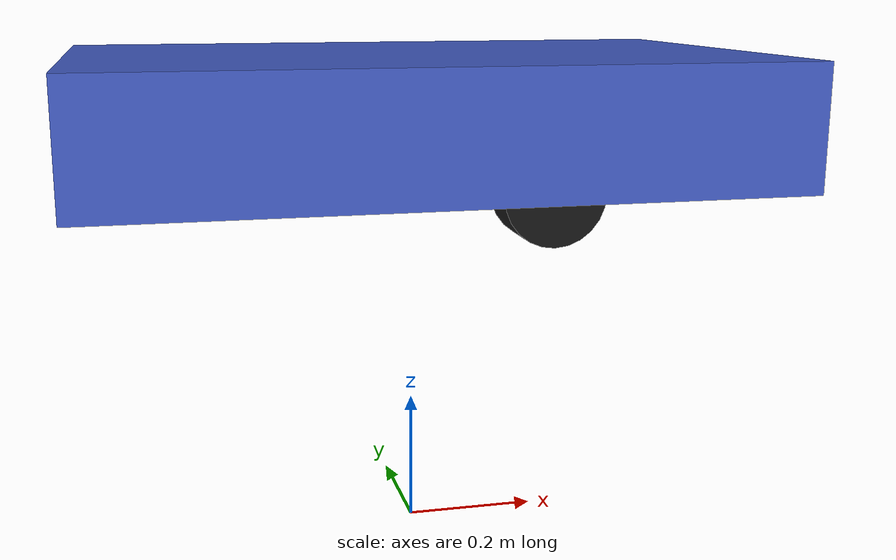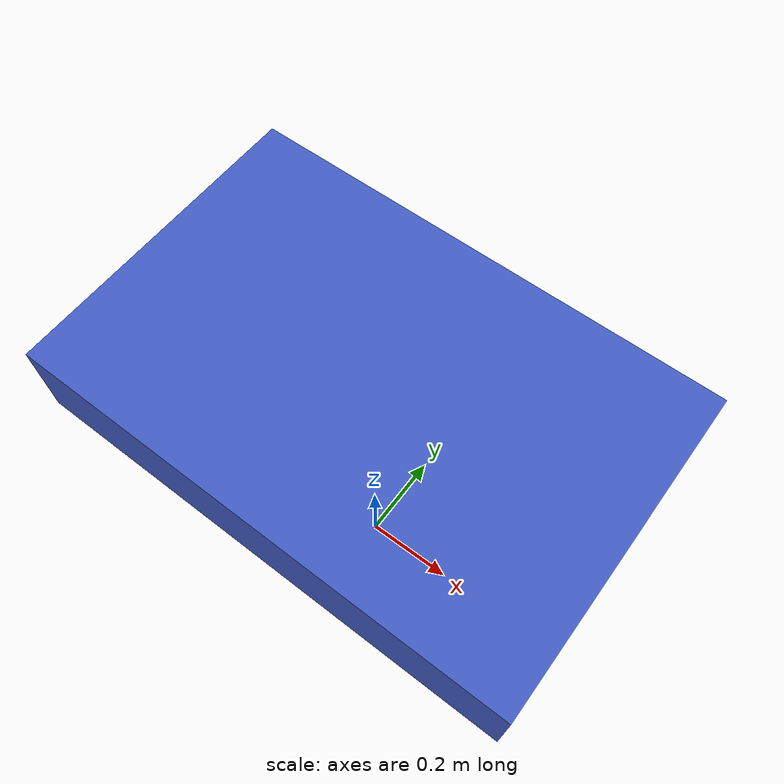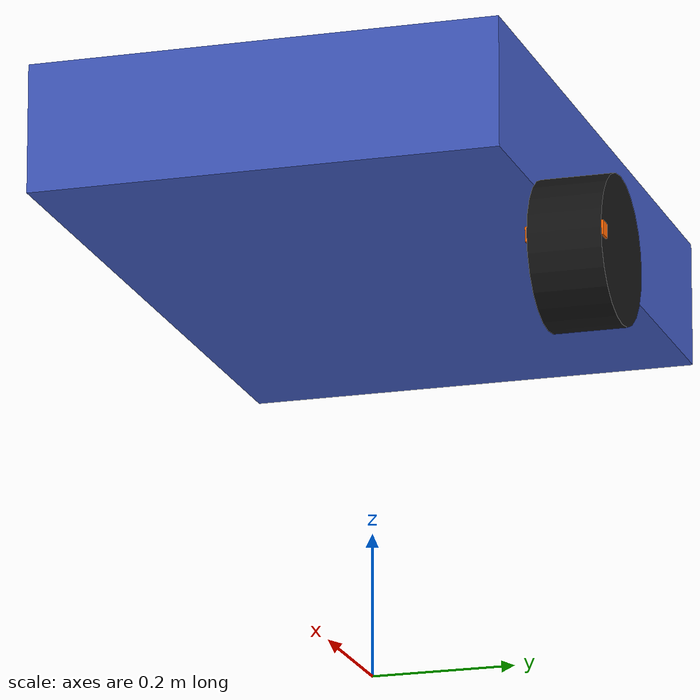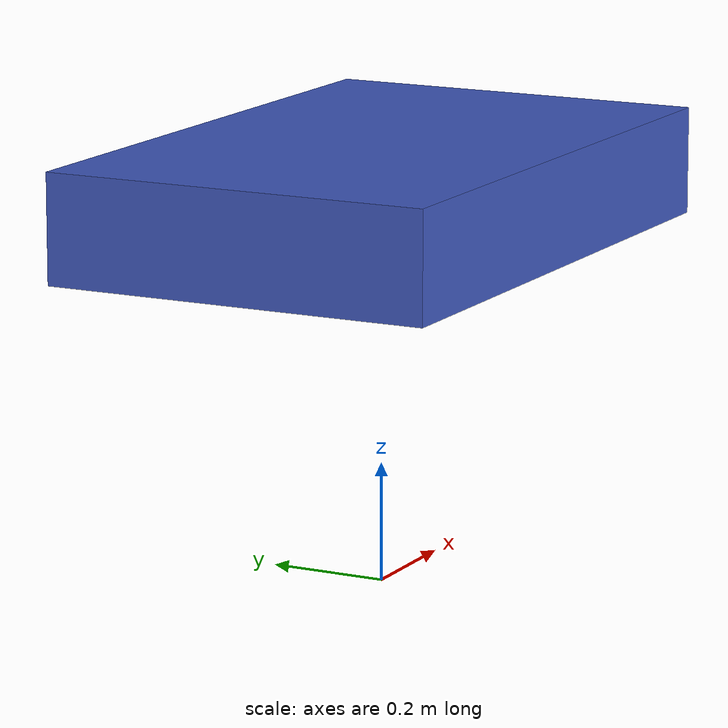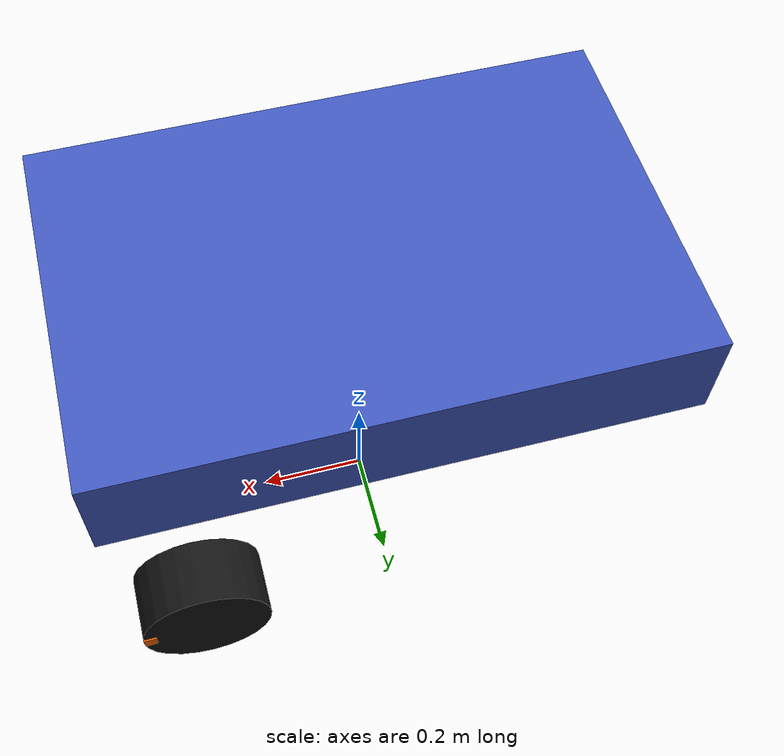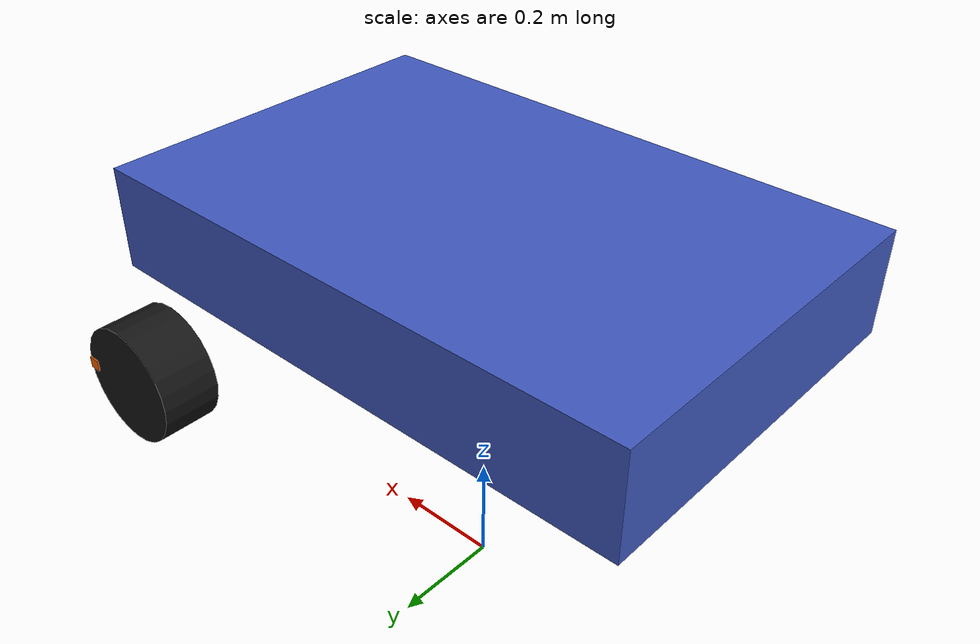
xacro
<?xml version="1.0"?>
<!-- A suspended front-left assembly for checking joint commands, not rover locomotion -->
<robot xmlns:xacro="http://www.ros.org/wiki/xacro" name="assignment1_drivetrain">
  <link name="world"/>
  <joint name="test_stand_mount" type="fixed">
    <parent link="world"/><child link="chassis"/>
    <origin xyz="0 0 0.65"/>
  </joint>
  <link name="chassis">
    <inertial>
      <mass value="30"/>
      <inertia ixx="2.5" iyy="4.0" izz="5.0" ixy="0" ixz="0" iyz="0"/>
    </inertial>
    <visual><geometry><box size="1.0 0.65 0.18"/></geometry>
      <material name="blue"><color rgba="0.25 0.35 0.75 1"/></material>
    </visual>
    <collision><geometry><box size="1.0 0.65 0.18"/></geometry></collision>
  </link>
  <joint name="front_left_steering_joint" type="revolute">
    <parent link="chassis"/><child link="front_left_knuckle"/>
    <origin xyz="0.36 0.4 -0.20"/>
    <axis xyz="0 0 1"/>
    <limit lower="-0.6" upper="0.6" effort="20" velocity="2"/>
  </joint>
  <link name="front_left_knuckle">
    <inertial><mass value="0.5"/>
      <inertia ixx="0.001" iyy="0.001" izz="0.001" ixy="0" ixz="0" iyz="0"/>
    </inertial>
    <visual><geometry><box size="0.04 0.04 0.08"/></geometry></visual>
  </link>
  <joint name="front_left_wheel_joint" type="continuous">
    <parent link="front_left_knuckle"/><child link="front_left_wheel"/>
    <axis xyz="0 1 0"/>
    <limit effort="20" velocity="6"/>
  </joint>
  <link name="front_left_wheel">
    <inertial><mass value="1.5"/>
      <inertia ixx="0.01" iyy="0.01" izz="0.01" ixy="0" ixz="0" iyz="0"/>
    </inertial>
    <!-- Reusing the existing four-wheel SDF's radius, width, joint axis, and placement -->
    <visual><origin rpy="1.57079632679 0 0"/>
      <geometry><cylinder radius="0.1016" length="0.10"/></geometry>
      <material name="black"><color rgba="0.08 0.08 0.08 1"/></material>
    </visual>
    <visual><origin xyz="0.09 0 0"/><geometry><box size="0.02 0.105 0.02"/></geometry>
      <material name="orange"><color rgba="1 0.4 0 1"/></material>
    </visual>
    <collision><origin rpy="1.57079632679 0 0"/>
      <geometry><cylinder radius="0.1016" length="0.10"/></geometry>
    </collision>
  </link>
  <ros2_control name="Assignment1GazeboSystem" type="system">
    <hardware><plugin>gazebo_ros2_control/GazeboSystem</plugin></hardware>
    <joint name="front_left_wheel_joint">
      <command_interface name="velocity"><param name="min">-6</param><param name="max">6</param></command_interface>
      <state_interface name="position"/><state_interface name="velocity"/>
    </joint>
    <joint name="front_left_steering_joint">
      <command_interface name="position"><param name="min">-0.6</param><param name="max">0.6</param></command_interface>
      <state_interface name="position"><param name="initial_value">0.0</param></state_interface>
      <state_interface name="velocity"/>
    </joint>
  </ros2_control>
  <gazebo>
    <plugin name="gazebo_ros2_control" filename="libgazebo_ros2_control.so">
      <ros><namespace>/assignment1</namespace></ros>
      <robot_param>robot_description</robot_param>
      <robot_param_node>robot_state_publisher</robot_param_node>
      <parameters>$(find rover_sim_urc)/config/assignment1_controllers.yaml</parameters>
    </plugin>
  </gazebo>
</robot>
